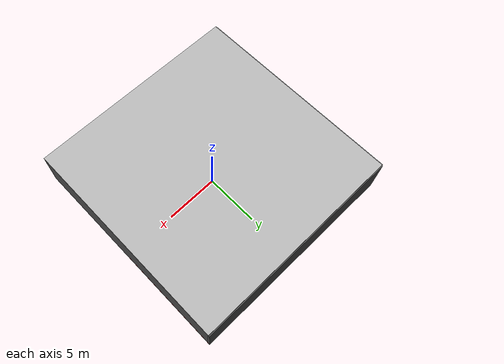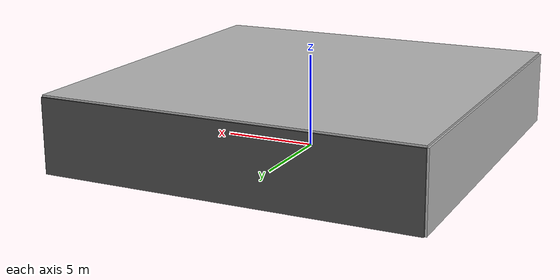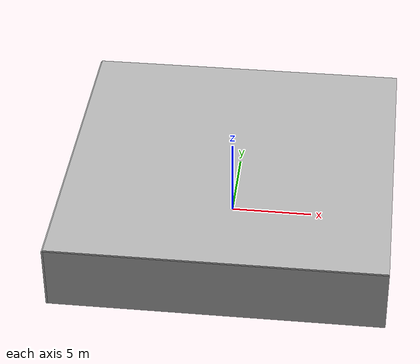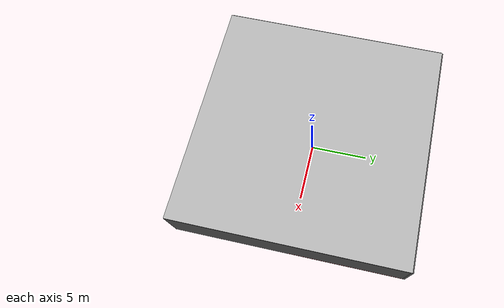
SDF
<sdf version="1.4">
 <world name="default">
  <physics type="ode">
   <max_step_size>0.001</max_step_size>
   <real_time_factor>1</real_time_factor>
   <real_time_update_rate>1000</real_time_update_rate>
   <gravity>0 0 -9.8</gravity>
  </physics>
  <scene><ambient>0.4 0.4 0.4 1</ambient><background>0.7 0.7 0.7 1</background><shadows>1</shadows></scene>
  <model name="Surrounding">
   <static>1</static>
   <link name="Ceiling">
    <collision name="Ceiling_Collision"><geometry><box><size>20 20 0.1</size></box></geometry></collision>
    <visual name="Ceiling_Visual">
     <geometry><box><size>20 20 0.1</size></box></geometry>
     <material>
      <script><uri>file://media/materials/scripts/gazebo.material</uri><name>Gazebo/LightOn</name></script>
     </material>
    </visual>
    <pose>0 0 4.05 0 0 0</pose>
   </link>
   <link name="Wall_South">
    <collision name="Wall_South_Collision">
     <geometry><box><size>20 0 4</size></box></geometry>
     <pose>0 0 2 0 -0 0</pose>
    </collision>
    <visual name="Wall_South_Visual">
     <pose>0 0 2 0 -0 0</pose>
     <geometry><box><size>20 0 4</size></box></geometry>
     <material>
      <script><uri>file://media/materials/scripts/gazebo.material</uri><name>Gazebo/Grey</name></script>
     </material>
    </visual>
    <velocity_decay><linear>0</linear><angular>0</angular></velocity_decay>
    <pose>0 -10 0 0 -0 0</pose>
   </link>
   <link name="Wall_East">
    <collision name="Wall_21_Collision">
     <geometry><box><size>20 0 4</size></box></geometry>
     <pose>0 0 2 0 -0 0</pose>
    </collision>
    <visual name="Wall_21_Visual">
     <pose>0 0 2 0 -0 0</pose>
     <geometry><box><size>20 0 4</size></box></geometry>
     <material>
      <script><uri>file://media/materials/scripts/gazebo.material</uri><name>Gazebo/DarkGrey</name></script>
     </material>
    </visual>
    <velocity_decay><linear>0</linear><angular>0</angular></velocity_decay>
    <pose>10 0 0 0 -0 1.5708</pose>
   </link>
   <link name="Wall_North">
    <collision name="Wall_22_Collision">
     <geometry><box><size>20 0.2 4</size></box></geometry>
     <pose>0 0 2 0 -0 0</pose>
    </collision>
    <visual name="Wall_22_Visual">
     <pose>0 0 2 0 -0 0</pose>
     <geometry><box><size>20 0.2 4</size></box></geometry>
     <material>
      <script><uri>file://media/materials/scripts/gazebo.material</uri><name>Gazebo/Road</name></script>
     </material>
    </visual>
    <velocity_decay><linear>0</linear><angular>0</angular></velocity_decay>
    <pose>0 10 0 0 -0 0</pose>
   </link>
   <link name="Wall_West">
    <collision name="Wall_23_Collision">
     <geometry><box><size>20 0.2 4</size></box></geometry>
     <pose>0 0 2 0 -0 0</pose>
    </collision>
    <visual name="Wall_23_Visual">
     <pose>0 0 2 0 -0 0</pose>
     <geometry><box><size>20 0.2 4</size></box></geometry>
     <material>
      <script><uri>file://media/materials/scripts/gazebo.material</uri><name>Gazebo/CloudySky</name></script>
     </material>
    </visual>
    <velocity_decay><linear>0</linear><angular>0</angular></velocity_decay>
    <pose>-10 0 0 0 0 -1.5708</pose>
   </link>
   <link name="Ground_link">
    <collision name="collision">
     <pose>0 0 .05 0 -0 0</pose>
     <geometry><box><size>20 20 0.1</size></box></geometry>
    </collision>
    <visual name="visual">
     <pose>0 0 .05 0 -0 0</pose>
     <geometry><box><size>20 20 0.1</size></box></geometry>
     <material>
      <script><uri>file://media/materials/scripts/gazebo.material</uri><name>Gazebo/Red</name></script>
     </material>
    </visual>
   </link>
   <static>1</static>
  </model>
  <spherical_coordinates>
   <surface_model>EARTH_WGS84</surface_model>
   <latitude_deg>0</latitude_deg>
   <longitude_deg>0</longitude_deg>
   <elevation>0</elevation>
   <heading_deg>0</heading_deg>
  </spherical_coordinates>
  <light name="lightball_0" type="diffuse">
   <diffuse>0.8 0.8 0.8 1</diffuse>
   <specular>0.2 0.2 0.2 1</specular>
   <attenuation>
    <range>100</range>
    <constant>0.7</constant>
    <linear>0.01</linear>
    <quadratic>0.001</quadratic>
   </attenuation>
   <direction>-0.5 0.1 -0.9</direction>
   <pose>-2.53447069915 -6.06372979638 3.61747172501 0 0 0</pose>
  </light>
  <light name="lightball_1" type="diffuse">
   <diffuse>0.8 0.8 0.8 1</diffuse>
   <specular>0.2 0.2 0.2 1</specular>
   <attenuation>
    <range>100</range>
    <constant>0.7</constant>
    <linear>0.01</linear>
    <quadratic>0.001</quadratic>
   </attenuation>
   <direction>-0.5 0.1 -0.9</direction>
   <pose>5.77803398681 -2.48601237446 0.746131466763 0 0 0</pose>
  </light>
  <light name="lightball_2" type="diffuse">
   <diffuse>0.8 0.8 0.8 1</diffuse>
   <specular>0.2 0.2 0.2 1</specular>
   <attenuation>
    <range>100</range>
    <constant>0.7</constant>
    <linear>0.01</linear>
    <quadratic>0.001</quadratic>
   </attenuation>
   <direction>-0.5 0.1 -0.9</direction>
   <pose>5.95657970763 -9.26717811775 1.76380850538 0 0 0</pose>
  </light>
  <light name="lightball_3" type="diffuse">
   <diffuse>0.8 0.8 0.8 1</diffuse>
   <specular>0.2 0.2 0.2 1</specular>
   <attenuation>
    <range>100</range>
    <constant>0.7</constant>
    <linear>0.01</linear>
    <quadratic>0.001</quadratic>
   </attenuation>
   <direction>-0.5 0.1 -0.9</direction>
   <pose>-9.40754934184 -9.63675202337 2.80816882389 0 0 0</pose>
  </light>
  <light name="lightball_4" type="diffuse">
   <diffuse>0.8 0.8 0.8 1</diffuse>
   <specular>0.2 0.2 0.2 1</specular>
   <attenuation>
    <range>100</range>
    <constant>0.7</constant>
    <linear>0.01</linear>
    <quadratic>0.001</quadratic>
   </attenuation>
   <direction>-0.5 0.1 -0.9</direction>
   <pose>1.65162274243 0.427201246023 0.913202594215 0 0 0</pose>
  </light>
  <light name="lightball_5" type="diffuse">
   <diffuse>0.8 0.8 0.8 1</diffuse>
   <specular>0.2 0.2 0.2 1</specular>
   <attenuation>
    <range>100</range>
    <constant>0.7</constant>
    <linear>0.01</linear>
    <quadratic>0.001</quadratic>
   </attenuation>
   <direction>-0.5 0.1 -0.9</direction>
   <pose>1.70513456326 -1.86734672349 2.86406512002 0 0 0</pose>
  </light>
  <light name="lightball_6" type="diffuse">
   <diffuse>0.8 0.8 0.8 1</diffuse>
   <specular>0.2 0.2 0.2 1</specular>
   <attenuation>
    <range>100</range>
    <constant>0.7</constant>
    <linear>0.01</linear>
    <quadratic>0.001</quadratic>
   </attenuation>
   <direction>-0.5 0.1 -0.9</direction>
   <pose>8.93755853511 6.98224302553 2.68956330195 0 0 0</pose>
  </light>
  <include>
   <uri>model://construction_cone</uri>
   <pose>-4.09136042325 5.635983233 0 0 0 1.29809414865</pose>
  </include>
  <include>
   <uri>model://construction_cone</uri>
   <pose>1.62760626032 -6.92662995614 0 0 0 2.72629102055</pose>
  </include>
  <include><uri>model://cabinet</uri><pose>1.18343692259 -3.9004087364 0 0 0 1.40200290066</pose></include>
  <include><uri>model://table</uri><pose>1.65003159155 5.67750418108 0 0 0 2.29489440493</pose></include>
 </world>
</sdf>

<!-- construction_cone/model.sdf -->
<sdf version="1.5">
  <model name="Construction Cone">
    <link name="link">
      <collision name="collision">
        <geometry>
          <mesh>
            <scale>10 10 10</scale>
            <uri>file://isr-testbed/construction_cone/meshes/construction_cone.dae</uri>
          </mesh>
        </geometry>
      </collision>
      <visual name="visual">
        <geometry>
          <mesh>
            <scale>10 10 10</scale>
            <uri>file://isr-testbed/construction_cone/meshes/construction_cone.dae</uri>
          </mesh>
        </geometry>
      </visual>
    </link>
  </model>
</sdf>

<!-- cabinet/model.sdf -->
<sdf version="1.5">
  <model name="cabinet">
    <static>true</static>
    <link name="cabinet_bottom_plate">
      <inertial>
        <pose>0 0 -1 0 0 0</pose>
        <inertia>
          <ixx>2.050000</ixx>
          <ixy>0</ixy>
          <ixz>0</ixz>
          <iyy>2.050000</iyy>
          <iyz>0</iyz>
          <izz>2.050000</izz>
        </inertia>
        <mass>25.000000</mass>
      </inertial>
      <collision name="cabinet_bottom_plate_geom">
        <pose>0 0 0.010000 0 0 0</pose>
        <geometry>
          <box>
            <size>0.450000 0.450000 0.020000</size>
          </box>
        </geometry>
      </collision>
      <visual name="cabinet_bottom_plate_geom_visual">
        <pose>0 0 0.010000 0 0 0</pose>
        <geometry>
          <box>
            <size>0.450000 0.450000 0.020000</size>
          </box>
        </geometry>
        <material>
          <script>
            <uri>model://media/materials/scripts/gazebo.material</uri>
            <name>Gazebo/Wood</name>
          </script>
        </material>
      </visual>
      <collision name="cabinet_bottom_plate_geom_cabinet_back_plate">
        <pose>0.235000 0 0.510000 0 0 0</pose>
        <geometry>
          <box>
            <size>0.020000 0.450000 1.020000</size>
          </box>
        </geometry>
      </collision>
      <visual name="cabinet_bottom_plate_geom_cabinet_back_plate_visual">
        <pose>0.235000 0 0.510000 0 0 0</pose>
        <geometry>
          <box>
            <size>0.020000 0.450000 1.020000</size>
          </box>
        </geometry>
        <material>
          <script>
            <uri>model://media/materials/scripts/gazebo.material</uri>
            <name>Gazebo/Wood</name>
          </script>
        </material>
      </visual>
      <collision name="cabinet_bottom_plate_geom_cabinet_left_plate">
        <pose>0 0.235000 0.510000 0 0 0</pose>
        <geometry>
          <box>
            <size>0.450000 0.020000 1.020000</size>
          </box>
        </geometry>
      </collision>
      <visual name="cabinet_bottom_plate_geom_cabinet_left_plate_visual">
        <pose>0 0.235000 0.510000 0 0 0</pose>
        <geometry>
          <box>
            <size>0.450000 0.020000 1.020000</size>
          </box>
        </geometry>
        <material>
          <script>
            <uri>model://media/materials/scripts/gazebo.material</uri>
            <name>Gazebo/Wood</name>
          </script>
        </material>
      </visual>
      <collision name="cabinet_bottom_plate_geom_cabinet_middle_plate">
        <pose>0 0 0.510000 0 0 0</pose>
        <geometry>
          <box>
            <size>0.450000 0.450000 0.020000</size>
          </box>
        </geometry>
      </collision>
      <visual name="cabinet_bottom_plate_geom_cabinet_middle_plate_visual">
        <pose>0 0 0.510000 0 0 0</pose>
        <geometry>
          <box>
            <size>0.450000 0.450000 0.020000</size>
          </box>
        </geometry>
        <material>
          <script>
            <uri>model://media/materials/scripts/gazebo.material</uri>
            <name>Gazebo/Wood</name>
          </script>
        </material>
      </visual>
      <collision name="cabinet_bottom_plate_geom_cabinet_right_plate">
        <pose>0 -0.235000 0.510000 0 0 0</pose>
        <geometry>
          <box>
            <size>0.450000 0.020000 1.020000</size>
          </box>
        </geometry>
      </collision>
      <visual name="cabinet_bottom_plate_geom_cabinet_right_plate_visual">
        <pose>0 -0.235000 0.510000 0 0 0</pose>
        <geometry>
          <box>
            <size>0.450000 0.020000 1.020000</size>
          </box>
        </geometry>
        <material>
          <script>
            <uri>model://media/materials/scripts/gazebo.material</uri>
            <name>Gazebo/Wood</name>
          </script>
        </material>
      </visual>
      <collision name="cabinet_bottom_plate_geom_cabinet_top_plate">
        <pose>0 0 1.010000 0 0 0</pose>
        <geometry>
          <box>
            <size>0.450000 0.450000 0.020000</size>
          </box>
        </geometry>
      </collision>
      <visual name="cabinet_bottom_plate_geom_cabinet_top_plate_visual">
        <pose>0 0 1.010000 0 0 0</pose>
        <geometry>
          <box>
            <size>0.450000 0.450000 0.020000</size>
          </box>
        </geometry>
        <material>
          <script>
            <uri>model://media/materials/scripts/gazebo.material</uri>
            <name>Gazebo/Wood</name>
          </script>
        </material>
      </visual>
    </link>
  </model>
</sdf>

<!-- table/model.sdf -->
<sdf version="1.5">
  <model name="table">
    <static>true</static>
    <link name="link">
      <collision name="surface">
        <pose>0 0 1.0 0 0 0</pose>
        <geometry>
          <box>
            <size>1.5 0.8 0.03</size>
          </box>
        </geometry>
        <surface>
          <friction>
            <ode>
              <mu>0.6</mu>
              <mu2>0.6</mu2>
            </ode>
          </friction>
        </surface>
      </collision>
      <visual name="visual1">
        <pose>0 0 1.0 0 0 0</pose>
        <geometry>
          <box>
            <size>1.5 0.8 0.03</size>
          </box>
        </geometry>
        <material>
          <script>
            <uri>model://media/materials/scripts/gazebo.material</uri>
            <name>Gazebo/Wood</name>
          </script>
        </material>
      </visual>
      <collision name="front_left_leg">
        <pose>0.68 0.38 0.5 0 0 0</pose>
        <geometry>
          <cylinder>
            <radius>0.02</radius>
            <length>1.0</length>
          </cylinder>
        </geometry>
      </collision>
      <visual name="front_left_leg">
        <pose>0.68 0.38 0.5 0 0 0</pose>
        <geometry>
          <cylinder>
            <radius>0.02</radius>
            <length>1.0</length>
          </cylinder>
        </geometry>
        <material>
          <script>
            <uri>model://media/materials/scripts/gazebo.material</uri>
            <name>Gazebo/Grey</name>
          </script>
        </material>
      </visual>
      <collision name="front_right_leg">
        <pose>0.68 -0.38 0.5 0 0 0</pose>
        <geometry>
          <cylinder>
            <radius>0.02</radius>
            <length>1.0</length>
          </cylinder>
        </geometry>
      </collision>
      <visual name="front_right_leg">
        <pose>0.68 -0.38 0.5 0 0 0</pose>
        <geometry>
          <cylinder>
            <radius>0.02</radius>
            <length>1.0</length>
          </cylinder>
        </geometry>
        <material>
          <script>
            <uri>model://media/materials/scripts/gazebo.material</uri>
            <name>Gazebo/Grey</name>
          </script>
        </material>
      </visual>
      <collision name="back_right_leg">
        <pose>-0.68 -0.38 0.5 0 0 0</pose>
        <geometry>
          <cylinder>
            <radius>0.02</radius>
            <length>1.0</length>
          </cylinder>
        </geometry>
      </collision>
      <visual name="back_right_leg">
        <pose>-0.68 -0.38 0.5 0 0 0</pose>
        <geometry>
          <cylinder>
            <radius>0.02</radius>
            <length>1.0</length>
          </cylinder>
        </geometry>
        <material>
          <script>
            <uri>model://media/materials/scripts/gazebo.material</uri>
            <name>Gazebo/Grey</name>
          </script>
        </material>
      </visual>
      <collision name="back_left_leg">
        <pose>-0.68 0.38 0.5 0 0 0</pose>
        <geometry>
          <cylinder>
            <radius>0.02</radius>
            <length>1.0</length>
          </cylinder>
        </geometry>
      </collision>
      <visual name="back_left_leg">
        <pose>-0.68 0.38 0.5 0 0 0</pose>
        <geometry>
          <cylinder>
            <radius>0.02</radius>
            <length>1.0</length>
          </cylinder>
        </geometry>
        <material>
          <script>
            <uri>model://media/materials/scripts/gazebo.material</uri>
            <name>Gazebo/Grey</name>
          </script>
        </material>
      </visual>
    </link>
  </model>
</sdf>
